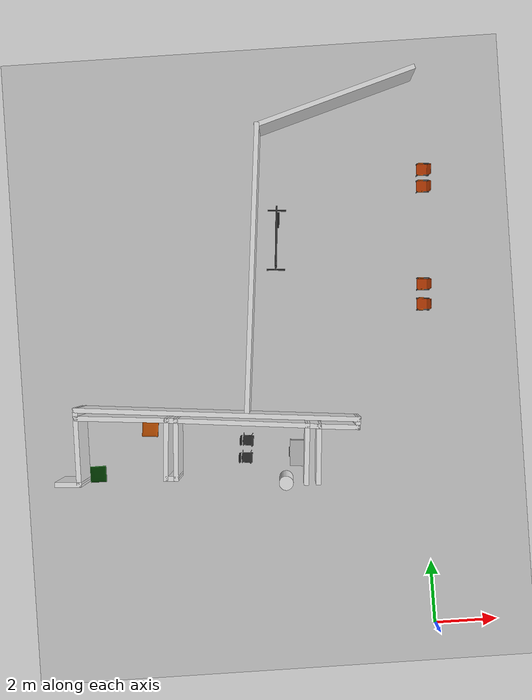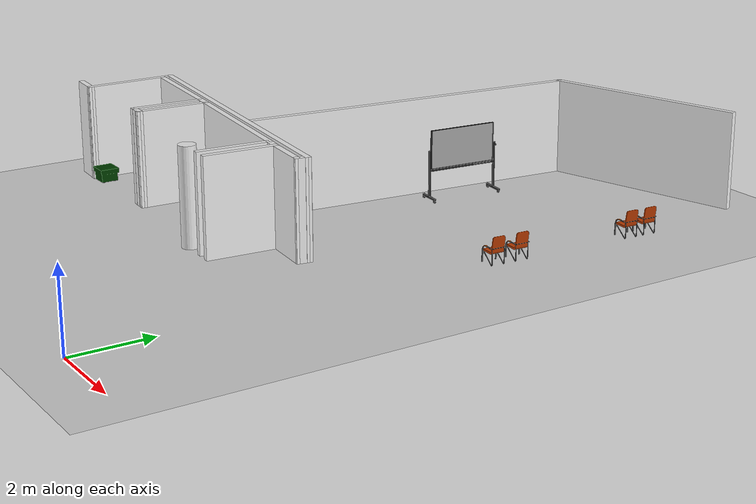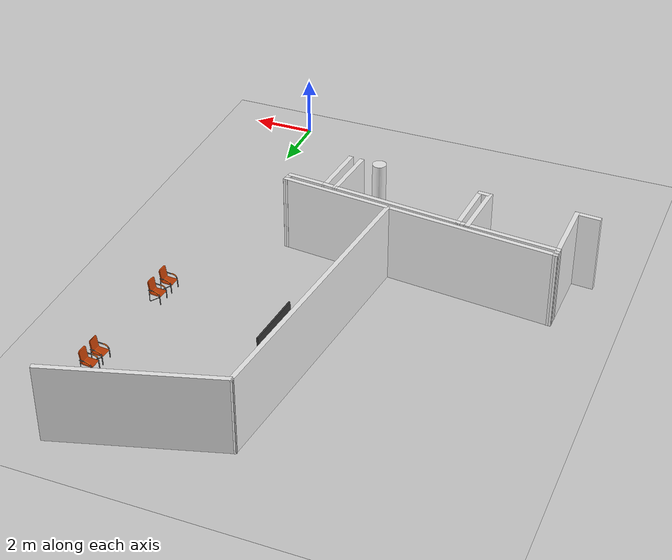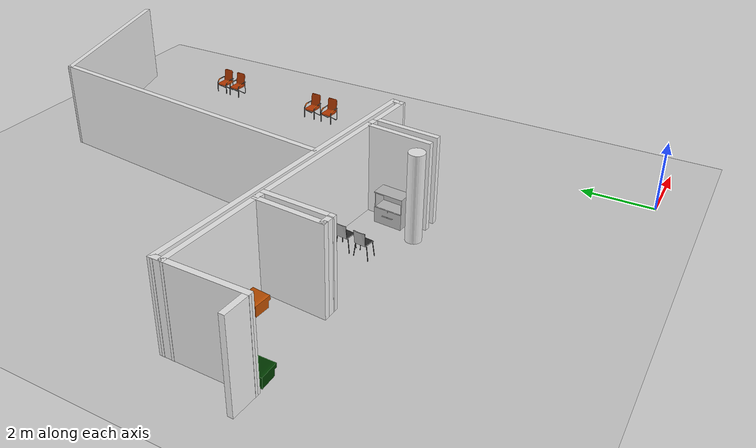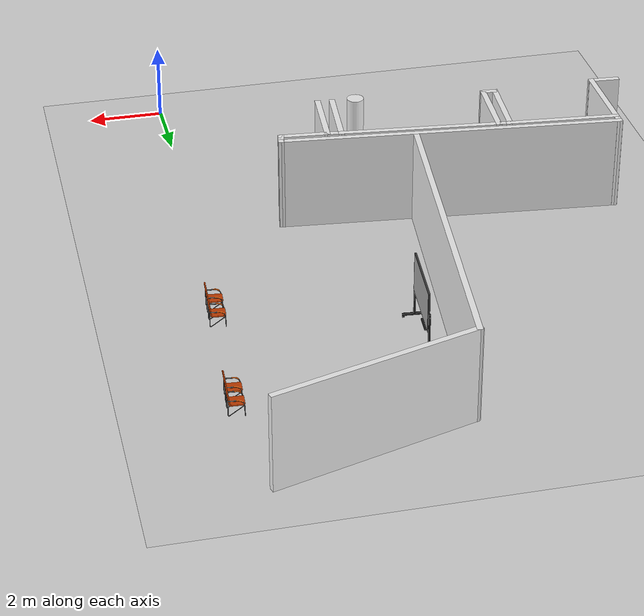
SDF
<sdf version="1.6">
 <world name="default">
  <model name="ground_plane">
   <static>1</static>
   <link name="link">
    <collision name="collision">
     <geometry><plane><normal>0 0 1</normal><size>100 100</size></plane></geometry>
     <surface><friction><ode><mu>100</mu><mu2>50</mu2></ode></friction></surface>
    </collision>
    <visual name="visual">
     <cast_shadows>0</cast_shadows>
     <geometry><plane><normal>0 0 1</normal><size>100 100</size></plane></geometry>
     <material>
      <script><uri>file://media/materials/scripts/gazebo.material</uri><name>Gazebo/Grey</name></script>
     </material>
    </visual>
   </link>
  </model>
  <model name="ucu_basic_frame.world">
   <link name="Wall_219">
    <pose>-11.9656 1.73894 0 0 0 -0.069823</pose>
    <visual name="Wall_219_Visual">
     <pose>0 0 1.25 0 -0 0</pose>
     <geometry><box><size>0.822603 0.15 2.5</size></box></geometry>
     <material>
      <script><uri>file://media/materials/scripts/gazebo.material</uri><name>Gazebo/White</name></script>
      <ambient>1 1 1 1</ambient>
      <diffuse>1 1 1 1</diffuse>
      <specular>0 0 0 1</specular>
      <emissive>0 0 0 1</emissive>
     </material>
     <meta><layer>0</layer></meta>
    </visual>
    <collision name="Wall_219_Collision">
     <pose>0 0 1.25 0 -0 0</pose>
     <geometry><box><size>0.822603 0.15 2.5</size></box></geometry>
     <surface>
      <friction>
       <ode><mu>1</mu><mu2>1</mu2><fdir1>0 0 0</fdir1><slip1>0</slip1><slip2>0</slip2></ode>
       <torsional>
        <coefficient>1</coefficient>
        <patch_radius>0</patch_radius>
        <surface_radius>0</surface_radius>
        <use_patch_radius>1</use_patch_radius>
        <ode><slip>0</slip></ode>
       </torsional>
      </friction>
      <bounce><restitution_coefficient>0</restitution_coefficient><threshold>1e+06</threshold></bounce>
      <contact>
       <collide_without_contact>0</collide_without_contact>
       <collide_without_contact_bitmask>1</collide_without_contact_bitmask>
       <collide_bitmask>1</collide_bitmask>
       <ode>
        <soft_cfm>0</soft_cfm>
        <soft_erp>0.2</soft_erp>
        <kp>1e+13</kp>
        <kd>1</kd>
        <max_vel>0.01</max_vel>
        <min_depth>0</min_depth>
       </ode>
       <bullet>
        <split_impulse>1</split_impulse>
        <split_impulse_penetration_threshold>-0.01</split_impulse_penetration_threshold>
        <soft_cfm>0</soft_cfm>
        <soft_erp>0.2</soft_erp>
        <kp>1e+13</kp>
        <kd>1</kd>
       </bullet>
      </contact>
     </surface>
    </collision>
   </link>
   <link name="Wall_235">
    <pose>-8.66541 3.50535 0 0 0 -0.094238</pose>
    <visual name="Wall_235_Visual">
     <pose>0 0 1.25 0 -0 0</pose>
     <geometry><box><size>0.419456 0.15 2.5</size></box></geometry>
     <material>
      <script><uri>file://media/materials/scripts/gazebo.material</uri><name>Gazebo/White</name></script>
      <ambient>1 1 1 1</ambient>
      <diffuse>1 1 1 1</diffuse>
      <specular>0 0 0 1</specular>
      <emissive>0 0 0 1</emissive>
     </material>
     <meta><layer>0</layer></meta>
    </visual>
    <collision name="Wall_235_Collision">
     <pose>0 0 1.25 0 -0 0</pose>
     <geometry><box><size>0.419456 0.15 2.5</size></box></geometry>
     <surface>
      <friction>
       <ode><mu>1</mu><mu2>1</mu2><fdir1>0 0 0</fdir1><slip1>0</slip1><slip2>0</slip2></ode>
       <torsional>
        <coefficient>1</coefficient>
        <patch_radius>0</patch_radius>
        <surface_radius>0</surface_radius>
        <use_patch_radius>1</use_patch_radius>
        <ode><slip>0</slip></ode>
       </torsional>
      </friction>
      <bounce><restitution_coefficient>0</restitution_coefficient><threshold>1e+06</threshold></bounce>
      <contact>
       <collide_without_contact>0</collide_without_contact>
       <collide_without_contact_bitmask>1</collide_without_contact_bitmask>
       <collide_bitmask>1</collide_bitmask>
       <ode>
        <soft_cfm>0</soft_cfm>
        <soft_erp>0.2</soft_erp>
        <kp>1e+13</kp>
        <kd>1</kd>
        <max_vel>0.01</max_vel>
        <min_depth>0</min_depth>
       </ode>
       <bullet>
        <split_impulse>1</split_impulse>
        <split_impulse_penetration_threshold>-0.01</split_impulse_penetration_threshold>
        <soft_cfm>0</soft_cfm>
        <soft_erp>0.2</soft_erp>
        <kp>1e+13</kp>
        <kd>1</kd>
       </bullet>
      </contact>
     </surface>
    </collision>
   </link>
   <link name="Wall_236">
    <pose>-6.50341 3.28586 0 0 0 -0.101636</pose>
    <visual name="Wall_236_Visual">
     <pose>0 0 1.25 0 -0 0</pose>
     <geometry><box><size>4.22679 0.15 2.5</size></box></geometry>
     <material>
      <script><uri>file://media/materials/scripts/gazebo.material</uri><name>Gazebo/White</name></script>
      <ambient>1 1 1 1</ambient>
      <diffuse>1 1 1 1</diffuse>
      <specular>0 0 0 1</specular>
      <emissive>0 0 0 1</emissive>
     </material>
     <meta><layer>0</layer></meta>
    </visual>
    <collision name="Wall_236_Collision">
     <pose>0 0 1.25 0 -0 0</pose>
     <geometry><box><size>4.22679 0.15 2.5</size></box></geometry>
     <surface>
      <friction>
       <ode><mu>1</mu><mu2>1</mu2><fdir1>0 0 0</fdir1><slip1>0</slip1><slip2>0</slip2></ode>
       <torsional>
        <coefficient>1</coefficient>
        <patch_radius>0</patch_radius>
        <surface_radius>0</surface_radius>
        <use_patch_radius>1</use_patch_radius>
        <ode><slip>0</slip></ode>
       </torsional>
      </friction>
      <bounce><restitution_coefficient>0</restitution_coefficient><threshold>1e+06</threshold></bounce>
      <contact>
       <collide_without_contact>0</collide_without_contact>
       <collide_without_contact_bitmask>1</collide_without_contact_bitmask>
       <collide_bitmask>1</collide_bitmask>
       <ode>
        <soft_cfm>0</soft_cfm>
        <soft_erp>0.2</soft_erp>
        <kp>1e+13</kp>
        <kd>1</kd>
        <max_vel>0.01</max_vel>
        <min_depth>0</min_depth>
       </ode>
       <bullet>
        <split_impulse>1</split_impulse>
        <split_impulse_penetration_threshold>-0.01</split_impulse_penetration_threshold>
        <soft_cfm>0</soft_cfm>
        <soft_erp>0.2</soft_erp>
        <kp>1e+13</kp>
        <kd>1</kd>
       </bullet>
      </contact>
     </surface>
    </collision>
   </link>
   <link name="Wall_238">
    <pose>-10.2067 3.64028 0 0 -0 3.05493</pose>
    <visual name="Wall_238_Visual">
     <pose>0 0 1.25 0 -0 0</pose>
     <geometry><box><size>2.97493 0.15 2.5</size></box></geometry>
     <material>
      <script><uri>file://media/materials/scripts/gazebo.material</uri><name>Gazebo/White</name></script>
      <ambient>1 1 1 1</ambient>
      <diffuse>1 1 1 1</diffuse>
      <specular>0 0 0 1</specular>
      <emissive>0 0 0 1</emissive>
     </material>
     <meta><layer>0</layer></meta>
    </visual>
    <collision name="Wall_238_Collision">
     <pose>0 0 1.25 0 -0 0</pose>
     <geometry><box><size>2.97493 0.15 2.5</size></box></geometry>
     <surface>
      <friction>
       <ode><mu>1</mu><mu2>1</mu2><fdir1>0 0 0</fdir1><slip1>0</slip1><slip2>0</slip2></ode>
       <torsional>
        <coefficient>1</coefficient>
        <patch_radius>0</patch_radius>
        <surface_radius>0</surface_radius>
        <use_patch_radius>1</use_patch_radius>
        <ode><slip>0</slip></ode>
       </torsional>
      </friction>
      <bounce><restitution_coefficient>0</restitution_coefficient><threshold>1e+06</threshold></bounce>
      <contact>
       <collide_without_contact>0</collide_without_contact>
       <collide_without_contact_bitmask>1</collide_without_contact_bitmask>
       <collide_bitmask>1</collide_bitmask>
       <ode>
        <soft_cfm>0</soft_cfm>
        <soft_erp>0.2</soft_erp>
        <kp>1e+13</kp>
        <kd>1</kd>
        <max_vel>0.01</max_vel>
        <min_depth>0</min_depth>
       </ode>
       <bullet>
        <split_impulse>1</split_impulse>
        <split_impulse_penetration_threshold>-0.01</split_impulse_penetration_threshold>
        <soft_cfm>0</soft_cfm>
        <soft_erp>0.2</soft_erp>
        <kp>1e+13</kp>
        <kd>1</kd>
       </bullet>
      </contact>
     </surface>
    </collision>
   </link>
   <link name="Wall_240">
    <pose>-8.88603 2.62353 0 0 0 -1.63778</pose>
    <visual name="Wall_240_Visual">
     <pose>0 0 1.25 0 -0 0</pose>
     <geometry><box><size>1.94303 0.15 2.5</size></box></geometry>
     <material>
      <script><uri>file://media/materials/scripts/gazebo.material</uri><name>Gazebo/White</name></script>
      <ambient>1 1 1 1</ambient>
      <diffuse>1 1 1 1</diffuse>
      <specular>0 0 0 1</specular>
      <emissive>0 0 0 1</emissive>
     </material>
     <meta><layer>0</layer></meta>
    </visual>
    <collision name="Wall_240_Collision">
     <pose>0 0 1.25 0 -0 0</pose>
     <geometry><box><size>1.94303 0.15 2.5</size></box></geometry>
     <surface>
      <friction>
       <ode><mu>1</mu><mu2>1</mu2><fdir1>0 0 0</fdir1><slip1>0</slip1><slip2>0</slip2></ode>
       <torsional>
        <coefficient>1</coefficient>
        <patch_radius>0</patch_radius>
        <surface_radius>0</surface_radius>
        <use_patch_radius>1</use_patch_radius>
        <ode><slip>0</slip></ode>
       </torsional>
      </friction>
      <bounce><restitution_coefficient>0</restitution_coefficient><threshold>1e+06</threshold></bounce>
      <contact>
       <collide_without_contact>0</collide_without_contact>
       <collide_without_contact_bitmask>1</collide_without_contact_bitmask>
       <collide_bitmask>1</collide_bitmask>
       <ode>
        <soft_cfm>0</soft_cfm>
        <soft_erp>0.2</soft_erp>
        <kp>1e+13</kp>
        <kd>1</kd>
        <max_vel>0.01</max_vel>
        <min_depth>0</min_depth>
       </ode>
       <bullet>
        <split_impulse>1</split_impulse>
        <split_impulse_penetration_threshold>-0.01</split_impulse_penetration_threshold>
        <soft_cfm>0</soft_cfm>
        <soft_erp>0.2</soft_erp>
        <kp>1e+13</kp>
        <kd>1</kd>
       </bullet>
      </contact>
     </surface>
    </collision>
   </link>
   <link name="Wall_242">
    <pose>-8.58067 2.60137 0 0 0 -1.62614</pose>
    <visual name="Wall_242_Visual">
     <pose>0 0 1.25 0 -0 0</pose>
     <geometry><box><size>1.93473 0.15 2.5</size></box></geometry>
     <material>
      <script><uri>file://media/materials/scripts/gazebo.material</uri><name>Gazebo/White</name></script>
      <ambient>1 1 1 1</ambient>
      <diffuse>1 1 1 1</diffuse>
      <specular>0 0 0 1</specular>
      <emissive>0 0 0 1</emissive>
     </material>
     <meta><layer>0</layer></meta>
    </visual>
    <collision name="Wall_242_Collision">
     <pose>0 0 1.25 0 -0 0</pose>
     <geometry><box><size>1.93473 0.15 2.5</size></box></geometry>
     <surface>
      <friction>
       <ode><mu>1</mu><mu2>1</mu2><fdir1>0 0 0</fdir1><slip1>0</slip1><slip2>0</slip2></ode>
       <torsional>
        <coefficient>1</coefficient>
        <patch_radius>0</patch_radius>
        <surface_radius>0</surface_radius>
        <use_patch_radius>1</use_patch_radius>
        <ode><slip>0</slip></ode>
       </torsional>
      </friction>
      <bounce><restitution_coefficient>0</restitution_coefficient><threshold>1e+06</threshold></bounce>
      <contact>
       <collide_without_contact>0</collide_without_contact>
       <collide_without_contact_bitmask>1</collide_without_contact_bitmask>
       <collide_bitmask>1</collide_bitmask>
       <ode>
        <soft_cfm>0</soft_cfm>
        <soft_erp>0.2</soft_erp>
        <kp>1e+13</kp>
        <kd>1</kd>
        <max_vel>0.01</max_vel>
        <min_depth>0</min_depth>
       </ode>
       <bullet>
        <split_impulse>1</split_impulse>
        <split_impulse_penetration_threshold>-0.01</split_impulse_penetration_threshold>
        <soft_cfm>0</soft_cfm>
        <soft_erp>0.2</soft_erp>
        <kp>1e+13</kp>
        <kd>1</kd>
       </bullet>
      </contact>
     </surface>
    </collision>
   </link>
   <link name="Wall_243">
    <pose>-8.77481 1.71955 0 0 -0 3.07623</pose>
    <visual name="Wall_243_Visual">
     <pose>0 0 1.25 0 -0 0</pose>
     <geometry><box><size>0.440136 0.15 2.5</size></box></geometry>
     <material>
      <script><uri>file://media/materials/scripts/gazebo.material</uri><name>Gazebo/White</name></script>
      <ambient>1 1 1 1</ambient>
      <diffuse>1 1 1 1</diffuse>
      <specular>0 0 0 1</specular>
      <emissive>0 0 0 1</emissive>
     </material>
     <meta><layer>0</layer></meta>
    </visual>
    <collision name="Wall_243_Collision">
     <pose>0 0 1.25 0 -0 0</pose>
     <geometry><box><size>0.440136 0.15 2.5</size></box></geometry>
     <surface>
      <friction>
       <ode><mu>1</mu><mu2>1</mu2><fdir1>0 0 0</fdir1><slip1>0</slip1><slip2>0</slip2></ode>
       <torsional>
        <coefficient>1</coefficient>
        <patch_radius>0</patch_radius>
        <surface_radius>0</surface_radius>
        <use_patch_radius>1</use_patch_radius>
        <ode><slip>0</slip></ode>
       </torsional>
      </friction>
      <bounce><restitution_coefficient>0</restitution_coefficient><threshold>1e+06</threshold></bounce>
      <contact>
       <collide_without_contact>0</collide_without_contact>
       <collide_without_contact_bitmask>1</collide_without_contact_bitmask>
       <collide_bitmask>1</collide_bitmask>
       <ode>
        <soft_cfm>0</soft_cfm>
        <soft_erp>0.2</soft_erp>
        <kp>1e+13</kp>
        <kd>1</kd>
        <max_vel>0.01</max_vel>
        <min_depth>0</min_depth>
       </ode>
       <bullet>
        <split_impulse>1</split_impulse>
        <split_impulse_penetration_threshold>-0.01</split_impulse_penetration_threshold>
        <soft_cfm>0</soft_cfm>
        <soft_erp>0.2</soft_erp>
        <kp>1e+13</kp>
        <kd>1</kd>
       </bullet>
      </contact>
     </surface>
    </collision>
   </link>
   <link name="Wall_246">
    <pose>-4.29722 3.05489 0 0 0 -0.134585</pose>
    <visual name="Wall_246_Visual">
     <pose>0 0 1.25 0 -0 0</pose>
     <geometry><box><size>0.509875 0.15 2.5</size></box></geometry>
     <material>
      <script><uri>file://media/materials/scripts/gazebo.material</uri><name>Gazebo/White</name></script>
      <ambient>1 1 1 1</ambient>
      <diffuse>1 1 1 1</diffuse>
      <specular>0 0 0 1</specular>
      <emissive>0 0 0 1</emissive>
     </material>
     <meta><layer>0</layer></meta>
    </visual>
    <collision name="Wall_246_Collision">
     <pose>0 0 1.25 0 -0 0</pose>
     <geometry><box><size>0.509875 0.15 2.5</size></box></geometry>
     <surface>
      <friction>
       <ode><mu>1</mu><mu2>1</mu2><fdir1>0 0 0</fdir1><slip1>0</slip1><slip2>0</slip2></ode>
       <torsional>
        <coefficient>1</coefficient>
        <patch_radius>0</patch_radius>
        <surface_radius>0</surface_radius>
        <use_patch_radius>1</use_patch_radius>
        <ode><slip>0</slip></ode>
       </torsional>
      </friction>
      <bounce><restitution_coefficient>0</restitution_coefficient><threshold>1e+06</threshold></bounce>
      <contact>
       <collide_without_contact>0</collide_without_contact>
       <collide_without_contact_bitmask>1</collide_without_contact_bitmask>
       <collide_bitmask>1</collide_bitmask>
       <ode>
        <soft_cfm>0</soft_cfm>
        <soft_erp>0.2</soft_erp>
        <kp>1e+13</kp>
        <kd>1</kd>
        <max_vel>0.01</max_vel>
        <min_depth>0</min_depth>
       </ode>
       <bullet>
        <split_impulse>1</split_impulse>
        <split_impulse_penetration_threshold>-0.01</split_impulse_penetration_threshold>
        <soft_cfm>0</soft_cfm>
        <soft_erp>0.2</soft_erp>
        <kp>1e+13</kp>
        <kd>1</kd>
       </bullet>
      </contact>
     </surface>
    </collision>
   </link>
   <link name="Wall_247">
    <pose>-3.52661 2.97846 0 0 0 -0.088046</pose>
    <visual name="Wall_247_Visual">
     <pose>0 0 1.25 0 -0 0</pose>
     <geometry><box><size>1.33921 0.15 2.5</size></box></geometry>
     <material>
      <script><uri>file://media/materials/scripts/gazebo.material</uri><name>Gazebo/White</name></script>
      <ambient>1 1 1 1</ambient>
      <diffuse>1 1 1 1</diffuse>
      <specular>0 0 0 1</specular>
      <emissive>0 0 0 1</emissive>
     </material>
     <meta><layer>0</layer></meta>
    </visual>
    <collision name="Wall_247_Collision">
     <pose>0 0 1.25 0 -0 0</pose>
     <geometry><box><size>1.33921 0.15 2.5</size></box></geometry>
     <surface>
      <friction>
       <ode><mu>1</mu><mu2>1</mu2><fdir1>0 0 0</fdir1><slip1>0</slip1><slip2>0</slip2></ode>
       <torsional>
        <coefficient>1</coefficient>
        <patch_radius>0</patch_radius>
        <surface_radius>0</surface_radius>
        <use_patch_radius>1</use_patch_radius>
        <ode><slip>0</slip></ode>
       </torsional>
      </friction>
      <bounce><restitution_coefficient>0</restitution_coefficient><threshold>1e+06</threshold></bounce>
      <contact>
       <collide_without_contact>0</collide_without_contact>
       <collide_without_contact_bitmask>1</collide_without_contact_bitmask>
       <collide_bitmask>1</collide_bitmask>
       <ode>
        <soft_cfm>0</soft_cfm>
        <soft_erp>0.2</soft_erp>
        <kp>1e+13</kp>
        <kd>1</kd>
        <max_vel>0.01</max_vel>
        <min_depth>0</min_depth>
       </ode>
       <bullet>
        <split_impulse>1</split_impulse>
        <split_impulse_penetration_threshold>-0.01</split_impulse_penetration_threshold>
        <soft_cfm>0</soft_cfm>
        <soft_erp>0.2</soft_erp>
        <kp>1e+13</kp>
        <kd>1</kd>
       </bullet>
      </contact>
     </surface>
    </collision>
   </link>
   <link name="Wall_248">
    <pose>-2.91396 3.04829 0 0 -0 1.40565</pose>
    <visual name="Wall_248_Visual">
     <pose>0 0 1.25 0 -0 0</pose>
     <geometry><box><size>0.397585 0.15 2.5</size></box></geometry>
     <material>
      <script><uri>file://media/materials/scripts/gazebo.material</uri><name>Gazebo/White</name></script>
      <ambient>1 1 1 1</ambient>
      <diffuse>1 1 1 1</diffuse>
      <specular>0 0 0 1</specular>
      <emissive>0 0 0 1</emissive>
     </material>
     <meta><layer>0</layer></meta>
    </visual>
    <collision name="Wall_248_Collision">
     <pose>0 0 1.25 0 -0 0</pose>
     <geometry><box><size>0.397585 0.15 2.5</size></box></geometry>
     <surface>
      <friction>
       <ode><mu>1</mu><mu2>1</mu2><fdir1>0 0 0</fdir1><slip1>0</slip1><slip2>0</slip2></ode>
       <torsional>
        <coefficient>1</coefficient>
        <patch_radius>0</patch_radius>
        <surface_radius>0</surface_radius>
        <use_patch_radius>1</use_patch_radius>
        <ode><slip>0</slip></ode>
       </torsional>
      </friction>
      <bounce><restitution_coefficient>0</restitution_coefficient><threshold>1e+06</threshold></bounce>
      <contact>
       <collide_without_contact>0</collide_without_contact>
       <collide_without_contact_bitmask>1</collide_without_contact_bitmask>
       <collide_bitmask>1</collide_bitmask>
       <ode>
        <soft_cfm>0</soft_cfm>
        <soft_erp>0.2</soft_erp>
        <kp>1e+13</kp>
        <kd>1</kd>
        <max_vel>0.01</max_vel>
        <min_depth>0</min_depth>
       </ode>
       <bullet>
        <split_impulse>1</split_impulse>
        <split_impulse_penetration_threshold>-0.01</split_impulse_penetration_threshold>
        <soft_cfm>0</soft_cfm>
        <soft_erp>0.2</soft_erp>
        <kp>1e+13</kp>
        <kd>1</kd>
       </bullet>
      </contact>
     </surface>
    </collision>
   </link>
   <link name="Wall_250">
    <pose>-4.55256 2.20116 0 0 0 -1.65832</pose>
    <visual name="Wall_250_Visual">
     <pose>0 0 1.25 0 -0 0</pose>
     <geometry><box><size>1.91251 0.15 2.5</size></box></geometry>
     <material>
      <script><uri>file://media/materials/scripts/gazebo.material</uri><name>Gazebo/White</name></script>
      <ambient>1 1 1 1</ambient>
      <diffuse>1 1 1 1</diffuse>
      <specular>0 0 0 1</specular>
      <emissive>0 0 0 1</emissive>
     </material>
     <meta><layer>0</layer></meta>
    </visual>
    <collision name="Wall_250_Collision">
     <pose>0 0 1.25 0 -0 0</pose>
     <geometry><box><size>1.91251 0.15 2.5</size></box></geometry>
     <surface>
      <friction>
       <ode><mu>1</mu><mu2>1</mu2><fdir1>0 0 0</fdir1><slip1>0</slip1><slip2>0</slip2></ode>
       <torsional>
        <coefficient>1</coefficient>
        <patch_radius>0</patch_radius>
        <surface_radius>0</surface_radius>
        <use_patch_radius>1</use_patch_radius>
        <ode><slip>0</slip></ode>
       </torsional>
      </friction>
      <bounce><restitution_coefficient>0</restitution_coefficient><threshold>1e+06</threshold></bounce>
      <contact>
       <collide_without_contact>0</collide_without_contact>
       <collide_without_contact_bitmask>1</collide_without_contact_bitmask>
       <collide_bitmask>1</collide_bitmask>
       <ode>
        <soft_cfm>0</soft_cfm>
        <soft_erp>0.2</soft_erp>
        <kp>1e+13</kp>
        <kd>1</kd>
        <max_vel>0.01</max_vel>
        <min_depth>0</min_depth>
       </ode>
       <bullet>
        <split_impulse>1</split_impulse>
        <split_impulse_penetration_threshold>-0.01</split_impulse_penetration_threshold>
        <soft_cfm>0</soft_cfm>
        <soft_erp>0.2</soft_erp>
        <kp>1e+13</kp>
        <kd>1</kd>
       </bullet>
      </contact>
     </surface>
    </collision>
   </link>
   <link name="Wall_252">
    <pose>-4.18528 2.16653 0 0 -0 1.49415</pose>
    <visual name="Wall_252_Visual">
     <pose>0 0 1.25 0 -0 0</pose>
     <geometry><box><size>1.88354 0.15 2.5</size></box></geometry>
     <material>
      <script><uri>file://media/materials/scripts/gazebo.material</uri><name>Gazebo/White</name></script>
      <ambient>1 1 1 1</ambient>
      <diffuse>1 1 1 1</diffuse>
      <specular>0 0 0 1</specular>
      <emissive>0 0 0 1</emissive>
     </material>
     <meta><layer>0</layer></meta>
    </visual>
    <collision name="Wall_252_Collision">
     <pose>0 0 1.25 0 -0 0</pose>
     <geometry><box><size>1.88354 0.15 2.5</size></box></geometry>
     <surface>
      <friction>
       <ode><mu>1</mu><mu2>1</mu2><fdir1>0 0 0</fdir1><slip1>0</slip1><slip2>0</slip2></ode>
       <torsional>
        <coefficient>1</coefficient>
        <patch_radius>0</patch_radius>
        <surface_radius>0</surface_radius>
        <use_patch_radius>1</use_patch_radius>
        <ode><slip>0</slip></ode>
       </torsional>
      </friction>
      <bounce><restitution_coefficient>0</restitution_coefficient><threshold>1e+06</threshold></bounce>
      <contact>
       <collide_without_contact>0</collide_without_contact>
       <collide_without_contact_bitmask>1</collide_without_contact_bitmask>
       <collide_bitmask>1</collide_bitmask>
       <ode>
        <soft_cfm>0</soft_cfm>
        <soft_erp>0.2</soft_erp>
        <kp>1e+13</kp>
        <kd>1</kd>
        <max_vel>0.01</max_vel>
        <min_depth>0</min_depth>
       </ode>
       <bullet>
        <split_impulse>1</split_impulse>
        <split_impulse_penetration_threshold>-0.01</split_impulse_penetration_threshold>
        <soft_cfm>0</soft_cfm>
        <soft_erp>0.2</soft_erp>
        <kp>1e+13</kp>
        <kd>1</kd>
       </bullet>
      </contact>
     </surface>
    </collision>
   </link>
   <link name="Wall_260">
    <pose>-7.25327 3.59269 0 0 -0 3.04503</pose>
    <visual name="Wall_260_Visual">
     <pose>0 0 1.25 0 -0 0</pose>
     <geometry><box><size>8.91013 0.15 2.5</size></box></geometry>
     <material>
      <script><uri>file://media/materials/scripts/gazebo.material</uri><name>Gazebo/White</name></script>
      <ambient>1 1 1 1</ambient>
      <diffuse>1 1 1 1</diffuse>
      <specular>0 0 0 1</specular>
      <emissive>0 0 0 1</emissive>
     </material>
     <meta><layer>0</layer></meta>
    </visual>
    <collision name="Wall_260_Collision">
     <pose>0 0 1.25 0 -0 0</pose>
     <geometry><box><size>8.91013 0.15 2.5</size></box></geometry>
     <surface>
      <friction>
       <ode><mu>1</mu><mu2>1</mu2><fdir1>0 0 0</fdir1><slip1>0</slip1><slip2>0</slip2></ode>
       <torsional>
        <coefficient>1</coefficient>
        <patch_radius>0</patch_radius>
        <surface_radius>0</surface_radius>
        <use_patch_radius>1</use_patch_radius>
        <ode><slip>0</slip></ode>
       </torsional>
      </friction>
      <bounce><restitution_coefficient>0</restitution_coefficient><threshold>1e+06</threshold></bounce>
      <contact>
       <collide_without_contact>0</collide_without_contact>
       <collide_without_contact_bitmask>1</collide_without_contact_bitmask>
       <collide_bitmask>1</collide_bitmask>
       <ode>
        <soft_cfm>0</soft_cfm>
        <soft_erp>0.2</soft_erp>
        <kp>1e+13</kp>
        <kd>1</kd>
        <max_vel>0.01</max_vel>
        <min_depth>0</min_depth>
       </ode>
       <bullet>
        <split_impulse>1</split_impulse>
        <split_impulse_penetration_threshold>-0.01</split_impulse_penetration_threshold>
        <soft_cfm>0</soft_cfm>
        <soft_erp>0.2</soft_erp>
        <kp>1e+13</kp>
        <kd>1</kd>
       </bullet>
      </contact>
     </surface>
    </collision>
   </link>
   <link name="Wall_317">
    <pose>-5.88136 8.00561 0 0 0 -1.6704</pose>
    <visual name="Wall_317_Visual">
     <pose>0 0 1.25 0 -0 0</pose>
     <geometry><box><size>9.08373 0.15 2.5</size></box></geometry>
     <material>
      <script><uri>file://media/materials/scripts/gazebo.material</uri><name>Gazebo/White</name></script>
      <ambient>1 1 1 1</ambient>
      <diffuse>1 1 1 1</diffuse>
      <specular>0 0 0 1</specular>
      <emissive>0 0 0 1</emissive>
     </material>
     <meta><layer>0</layer></meta>
    </visual>
    <collision name="Wall_317_Collision">
     <pose>0 0 1.25 0 -0 0</pose>
     <geometry><box><size>9.08373 0.15 2.5</size></box></geometry>
     <surface>
      <friction>
       <ode><mu>1</mu><mu2>1</mu2><fdir1>0 0 0</fdir1><slip1>0</slip1><slip2>0</slip2></ode>
       <torsional>
        <coefficient>1</coefficient>
        <patch_radius>0</patch_radius>
        <surface_radius>0</surface_radius>
        <use_patch_radius>1</use_patch_radius>
        <ode><slip>0</slip></ode>
       </torsional>
      </friction>
      <bounce><restitution_coefficient>0</restitution_coefficient><threshold>1e+06</threshold></bounce>
      <contact>
       <collide_without_contact>0</collide_without_contact>
       <collide_without_contact_bitmask>1</collide_without_contact_bitmask>
       <collide_bitmask>1</collide_bitmask>
       <ode>
        <soft_cfm>0</soft_cfm>
        <soft_erp>0.2</soft_erp>
        <kp>1e+13</kp>
        <kd>1</kd>
        <max_vel>0.01</max_vel>
        <min_depth>0</min_depth>
       </ode>
       <bullet>
        <split_impulse>1</split_impulse>
        <split_impulse_penetration_threshold>-0.01</split_impulse_penetration_threshold>
        <soft_cfm>0</soft_cfm>
        <soft_erp>0.2</soft_erp>
        <kp>1e+13</kp>
        <kd>1</kd>
       </bullet>
      </contact>
     </surface>
    </collision>
   </link>
   <link name="Wall_319">
    <pose>-2.97852 13.1783 0 0 -0 0.287873</pose>
    <visual name="Wall_319_Visual">
     <pose>0 0 1.25 0 -0 0</pose>
     <geometry><box><size>5.27832 0.15 2.5</size></box></geometry>
     <material>
      <script><uri>file://media/materials/scripts/gazebo.material</uri><name>Gazebo/White</name></script>
      <ambient>1 1 1 1</ambient>
      <diffuse>1 1 1 1</diffuse>
      <specular>0 0 0 1</specular>
      <emissive>0 0 0 1</emissive>
     </material>
     <meta><layer>0</layer></meta>
    </visual>
    <collision name="Wall_319_Collision">
     <pose>0 0 1.25 0 -0 0</pose>
     <geometry><box><size>5.27832 0.15 2.5</size></box></geometry>
     <surface>
      <friction>
       <ode><mu>1</mu><mu2>1</mu2><fdir1>0 0 0</fdir1><slip1>0</slip1><slip2>0</slip2></ode>
       <torsional>
        <coefficient>1</coefficient>
        <patch_radius>0</patch_radius>
        <surface_radius>0</surface_radius>
        <use_patch_radius>1</use_patch_radius>
        <ode><slip>0</slip></ode>
       </torsional>
      </friction>
      <bounce><restitution_coefficient>0</restitution_coefficient><threshold>1e+06</threshold></bounce>
      <contact>
       <collide_without_contact>0</collide_without_contact>
       <collide_without_contact_bitmask>1</collide_without_contact_bitmask>
       <collide_bitmask>1</collide_bitmask>
       <ode>
        <soft_cfm>0</soft_cfm>
        <soft_erp>0.2</soft_erp>
        <kp>1e+13</kp>
        <kd>1</kd>
        <max_vel>0.01</max_vel>
        <min_depth>0</min_depth>
       </ode>
       <bullet>
        <split_impulse>1</split_impulse>
        <split_impulse_penetration_threshold>-0.01</split_impulse_penetration_threshold>
        <soft_cfm>0</soft_cfm>
        <soft_erp>0.2</soft_erp>
        <kp>1e+13</kp>
        <kd>1</kd>
       </bullet>
      </contact>
     </surface>
    </collision>
   </link>
   <link name="Wall_328">
    <pose>-11.622 2.739 0 0 -0 1.56287</pose>
    <inertial>
     <mass>1</mass>
     <inertia><ixx>1</ixx><ixy>0</ixy><ixz>0</ixz><iyy>1</iyy><iyz>0</iyz><izz>1</izz></inertia>
    </inertial>
    <visual name="Wall_328_Visual">
     <pose>0 0 1.25 0 -0 0</pose>
     <geometry><box><size>2.19711 0.15 2.5</size></box></geometry>
     <material>
      <script><uri>file://media/materials/scripts/gazebo.material</uri><name>Gazebo/White</name></script>
      <ambient>1 1 1 1</ambient>
      <diffuse>1 1 1 1</diffuse>
      <specular>0 0 0 1</specular>
      <emissive>0 0 0 1</emissive>
      <shader type="vertex"><normal_map>__default__</normal_map></shader>
     </material>
     <meta><layer>0</layer></meta>
    </visual>
    <collision name="Wall_328_Collision">
     <pose>0 0 1.25 0 -0 0</pose>
     <geometry><box><size>2.19711 0.15 2.5</size></box></geometry>
     <surface>
      <friction>
       <ode><mu>1</mu><mu2>1</mu2><fdir1>0 0 0</fdir1><slip1>0</slip1><slip2>0</slip2></ode>
       <torsional>
        <coefficient>1</coefficient>
        <patch_radius>0</patch_radius>
        <surface_radius>0</surface_radius>
        <use_patch_radius>1</use_patch_radius>
        <ode><slip>0</slip></ode>
       </torsional>
      </friction>
      <bounce><restitution_coefficient>0</restitution_coefficient><threshold>1e+06</threshold></bounce>
      <contact>
       <collide_without_contact>0</collide_without_contact>
       <collide_without_contact_bitmask>1</collide_without_contact_bitmask>
       <collide_bitmask>1</collide_bitmask>
       <ode>
        <soft_cfm>0</soft_cfm>
        <soft_erp>0.2</soft_erp>
        <kp>1e+13</kp>
        <kd>1</kd>
        <max_vel>0.01</max_vel>
        <min_depth>0</min_depth>
       </ode>
       <bullet>
        <split_impulse>1</split_impulse>
        <split_impulse_penetration_threshold>-0.01</split_impulse_penetration_threshold>
        <soft_cfm>0</soft_cfm>
        <soft_erp>0.2</soft_erp>
        <kp>1e+13</kp>
        <kd>1</kd>
       </bullet>
      </contact>
     </surface>
    </collision>
   </link>
   <link name="Wall_329">
    <pose>-11.6134 3.88876 0 0 -0 1.56703</pose>
    <visual name="Wall_329_Visual">
     <pose>0 0 1.25 0 -0 0</pose>
     <geometry><box><size>0.402461 0.15 2.5</size></box></geometry>
     <material>
      <script><uri>file://media/materials/scripts/gazebo.material</uri><name>Gazebo/White</name></script>
      <ambient>1 1 1 1</ambient>
      <diffuse>1 1 1 1</diffuse>
      <specular>0 0 0 1</specular>
      <emissive>0 0 0 1</emissive>
     </material>
     <meta><layer>0</layer></meta>
    </visual>
    <collision name="Wall_329_Collision">
     <pose>0 0 1.25 0 -0 0</pose>
     <geometry><box><size>0.402461 0.15 2.5</size></box></geometry>
     <surface>
      <friction>
       <ode><mu>1</mu><mu2>1</mu2><fdir1>0 0 0</fdir1><slip1>0</slip1><slip2>0</slip2></ode>
       <torsional>
        <coefficient>1</coefficient>
        <patch_radius>0</patch_radius>
        <surface_radius>0</surface_radius>
        <use_patch_radius>1</use_patch_radius>
        <ode><slip>0</slip></ode>
       </torsional>
      </friction>
      <bounce><restitution_coefficient>0</restitution_coefficient><threshold>1e+06</threshold></bounce>
      <contact>
       <collide_without_contact>0</collide_without_contact>
       <collide_without_contact_bitmask>1</collide_without_contact_bitmask>
       <collide_bitmask>1</collide_bitmask>
       <ode>
        <soft_cfm>0</soft_cfm>
        <soft_erp>0.2</soft_erp>
        <kp>1e+13</kp>
        <kd>1</kd>
        <max_vel>0.01</max_vel>
        <min_depth>0</min_depth>
       </ode>
       <bullet>
        <split_impulse>1</split_impulse>
        <split_impulse_penetration_threshold>-0.01</split_impulse_penetration_threshold>
        <soft_cfm>0</soft_cfm>
        <soft_erp>0.2</soft_erp>
        <kp>1e+13</kp>
        <kd>1</kd>
       </bullet>
      </contact>
     </surface>
    </collision>
   </link>
   <link name="link_0">
    <pose>-5.2461 1.3502 1.26135 0 -0 0</pose>
    <inertial>
     <mass>1</mass>
     <inertia><ixx>0.145833</ixx><ixy>0</ixy><ixz>0</ixz><iyy>0.145833</iyy><iyz>0</iyz><izz>0.125</izz></inertia>
     <pose>0 0 1.25 0 -0 0</pose>
    </inertial>
    <visual name="visual">
     <geometry><cylinder><radius>0.22</radius><length>2.5</length></cylinder></geometry>
     <material>
      <lighting>1</lighting>
      <script><uri>file://media/materials/scripts/gazebo.material</uri><name>Gazebo/White</name></script>
      <ambient>1 1 1 1</ambient>
      <diffuse>1 1 1 1</diffuse>
      <specular>0 0 0 1</specular>
      <emissive>0 0 0 1</emissive>
      <shader type="vertex"><normal_map>__default__</normal_map></shader>
     </material>
    </visual>
    <collision name="collision">
     <geometry><cylinder><radius>0.22</radius><length>2.5</length></cylinder></geometry>
     <surface>
      <friction>
       <ode><mu>1</mu><mu2>1</mu2><fdir1>0 0 0</fdir1><slip1>0</slip1><slip2>0</slip2></ode>
       <torsional>
        <coefficient>1</coefficient>
        <patch_radius>0</patch_radius>
        <surface_radius>0</surface_radius>
        <use_patch_radius>1</use_patch_radius>
        <ode><slip>0</slip></ode>
       </torsional>
      </friction>
      <bounce><restitution_coefficient>0</restitution_coefficient><threshold>1e+06</threshold></bounce>
      <contact>
       <collide_without_contact>0</collide_without_contact>
       <collide_without_contact_bitmask>1</collide_without_contact_bitmask>
       <collide_bitmask>1</collide_bitmask>
       <ode>
        <soft_cfm>0</soft_cfm>
        <soft_erp>0.2</soft_erp>
        <kp>1e+13</kp>
        <kd>1</kd>
        <max_vel>0.01</max_vel>
        <min_depth>0</min_depth>
       </ode>
       <bullet>
        <split_impulse>1</split_impulse>
        <split_impulse_penetration_threshold>-0.01</split_impulse_penetration_threshold>
        <soft_cfm>0</soft_cfm>
        <soft_erp>0.2</soft_erp>
        <kp>1e+13</kp>
        <kd>1</kd>
       </bullet>
      </contact>
     </surface>
    </collision>
   </link>
   <static>1</static>
   <pose>0.7577 3.6363 0 0 -0 0</pose>
  </model>
  <model name="locker_014">
   <pose>-4.09002 5.79999 0.450773 -1.1e-05 3e-06 -1.65002</pose>
   <static>0</static>
   <link name="model_body">
    <visual name="visual">
     <geometry>
      <mesh><uri>model://robert_gazebo/meshes/locker_008_visual.dae</uri><scale>1 1 1</scale></mesh>
     </geometry>
    </visual>
    <collision name="collision">
     <geometry>
      <mesh><uri>model://robert_gazebo/meshes/locker_008_collision.dae</uri><scale>1 1 1</scale></mesh>
     </geometry>
    </collision>
    <inertial>
     <inertia><ixx>0.69</ixx><ixy>0</ixy><ixz>0</ixz><iyy>1.19</iyy><iyz>0</iyz><izz>0.78</izz></inertia>
     <mass>10</mass>
    </inertial>
   </link>
  </model>
  <model name="puffy_green_1">
   <pose>-10.5 5.5 0.20385 0 -1.7e-05 0</pose>
   <static>0</static>
   <link name="model_body">
    <visual name="visual">
     <geometry>
      <mesh><uri>model://robert_gazebo/meshes/puffy_visual_green.dae</uri><scale>1 1 1</scale></mesh>
     </geometry>
    </visual>
    <collision name="collision">
     <geometry>
      <mesh><uri>model://robert_gazebo/meshes/puffy_collision.dae</uri><scale>1 1 1</scale></mesh>
     </geometry>
    </collision>
    <inertial>
     <inertia><ixx>0.35</ixx><ixy>0</ixy><ixz>0</ixz><iyy>0.35</iyy><iyz>0</iyz><izz>0.43</izz></inertia>
     <mass>10</mass>
    </inertial>
   </link>
  </model>
  <model name="puffy_orange_1">
   <pose>-8.74 6.85 0.203852 9e-06 -1.3e-05 -0.1</pose>
   <static>0</static>
   <link name="model_body">
    <visual name="visual">
     <geometry>
      <mesh><uri>model://robert_gazebo/meshes/puffy_visual_orange.dae</uri><scale>1 1 1</scale></mesh>
     </geometry>
    </visual>
    <collision name="collision">
     <geometry>
      <mesh><uri>model://robert_gazebo/meshes/puffy_collision.dae</uri><scale>1 1 1</scale></mesh>
     </geometry>
    </collision>
    <inertial>
     <inertia><ixx>0.35</ixx><ixy>0</ixy><ixz>0</ixz><iyy>0.35</iyy><iyz>0</iyz><izz>0.43</izz></inertia>
     <mass>10</mass>
    </inertial>
   </link>
  </model>
  <model name="classroom_chair_014_1">
   <pose>-5.65998 6.28006 0.445354 3e-06 0.000118 1.45249</pose>
   <static>0</static>
   <link name="model_body">
    <visual name="visual">
     <geometry>
      <mesh><uri>model://robert_gazebo/meshes/classroom_chair_grey_visual.dae</uri><scale>100 100 100</scale></mesh>
     </geometry>
    </visual>
    <collision name="collision">
     <geometry>
      <mesh><uri>model://robert_gazebo/meshes/classroom_chair_collision.dae</uri><scale>1 1 1</scale></mesh>
     </geometry>
    </collision>
    <inertial>
     <inertia><ixx>0.34</ixx><ixy>0</ixy><ixz>0</ixz><iyy>0.34</iyy><iyz>0</iyz><izz>0.18</izz></inertia>
     <mass>5</mass>
    </inertial>
   </link>
  </model>
  <model name="classroom_chair_014_2">
   <pose>-5.72996 5.73007 0.445361 4.1e-05 0.000147 1.46991</pose>
   <static>0</static>
   <link name="model_body">
    <visual name="visual">
     <geometry>
      <mesh><uri>model://robert_gazebo/meshes/classroom_chair_grey_visual.dae</uri><scale>100 100 100</scale></mesh>
     </geometry>
    </visual>
    <collision name="collision">
     <geometry>
      <mesh><uri>model://robert_gazebo/meshes/classroom_chair_collision.dae</uri><scale>1 1 1</scale></mesh>
     </geometry>
    </collision>
    <inertial>
     <inertia><ixx>0.34</ixx><ixy>0</ixy><ixz>0</ixz><iyy>0.34</iyy><iyz>0</iyz><izz>0.18</izz></inertia>
     <mass>5</mass>
    </inertial>
   </link>
  </model>
  <model name="board_lectorium">
   <pose>-4.30445 12.6412 1.2483 0.000425 -0.002923 -1.65138</pose>
   <static>0</static>
   <link name="model_body">
    <visual name="visual">
     <geometry>
      <mesh><uri>model://robert_gazebo/meshes/board_stand_visual.dae</uri><scale>1 1 1</scale></mesh>
     </geometry>
    </visual>
    <collision name="collision">
     <geometry>
      <mesh><uri>model://robert_gazebo/meshes/board_stand_collision.dae</uri><scale>1 1 1</scale></mesh>
     </geometry>
    </collision>
    <inertial>
     <inertia><ixx>2.05</ixx><ixy>0</ixy><ixz>0</ixz><iyy>4.5</iyy><iyz>0</iyz><izz>3.16</izz></inertia>
     <mass>10</mass>
    </inertial>
   </link>
  </model>
  <model name="lect_chair_orange">
   <pose>0.363014 10.911 0.37783 0.000123 -0.00123 3.07086</pose>
   <static>0</static>
   <link name="model_body">
    <visual name="visual">
     <geometry>
      <mesh><uri>model://robert_gazebo/meshes/lectorium_chair_visual_orange.dae</uri><scale>1 1 1</scale></mesh>
     </geometry>
    </visual>
    <collision name="collision">
     <geometry>
      <mesh><uri>model://robert_gazebo/meshes/lectorium_chair_collision.dae</uri><scale>1 1 1</scale></mesh>
     </geometry>
    </collision>
    <inertial>
     <inertia><ixx>0.53</ixx><ixy>0</ixy><ixz>0</ixz><iyy>0.54</iyy><iyz>0</iyz><izz>0.28</izz></inertia>
     <mass>8</mass>
    </inertial>
   </link>
  </model>
  <model name="lect_chair_orange_clone">
   <pose>0.321754 10.2692 0.377832 0.000123 -0.00123 3.07086</pose>
   <static>0</static>
   <link name="model_body">
    <visual name="visual">
     <geometry>
      <mesh><uri>model://robert_gazebo/meshes/lectorium_chair_visual_orange.dae</uri><scale>1 1 1</scale></mesh>
     </geometry>
    </visual>
    <collision name="collision">
     <geometry>
      <mesh><uri>model://robert_gazebo/meshes/lectorium_chair_collision.dae</uri><scale>1 1 1</scale></mesh>
     </geometry>
    </collision>
    <inertial>
     <inertia><ixx>0.53</ixx><ixy>0</ixy><ixz>0</ixz><iyy>0.54</iyy><iyz>0</iyz><izz>0.28</izz></inertia>
     <mass>8</mass>
    </inertial>
   </link>
  </model>
  <model name="lect_chair_orange_clone_0">
   <pose>0.551246 14.0359 0.377761 0.000123 -0.00123 3.07086</pose>
   <static>0</static>
   <link name="model_body">
    <visual name="visual">
     <geometry>
      <mesh><uri>model://robert_gazebo/meshes/lectorium_chair_visual_orange.dae</uri><scale>1 1 1</scale></mesh>
     </geometry>
    </visual>
    <collision name="collision">
     <geometry>
      <mesh><uri>model://robert_gazebo/meshes/lectorium_chair_collision.dae</uri><scale>1 1 1</scale></mesh>
     </geometry>
    </collision>
    <inertial>
     <inertia><ixx>0.53</ixx><ixy>0</ixy><ixz>0</ixz><iyy>0.54</iyy><iyz>0</iyz><izz>0.28</izz></inertia>
     <mass>8</mass>
    </inertial>
   </link>
  </model>
  <model name="lect_chair_orange_clone_1">
   <pose>0.58956 14.5715 0.377847 0.000123 -0.00123 3.07086</pose>
   <static>0</static>
   <link name="model_body">
    <visual name="visual">
     <geometry>
      <mesh><uri>model://robert_gazebo/meshes/lectorium_chair_visual_orange.dae</uri><scale>1 1 1</scale></mesh>
     </geometry>
    </visual>
    <collision name="collision">
     <geometry>
      <mesh><uri>model://robert_gazebo/meshes/lectorium_chair_collision.dae</uri><scale>1 1 1</scale></mesh>
     </geometry>
    </collision>
    <inertial>
     <inertia><ixx>0.53</ixx><ixy>0</ixy><ixz>0</ixz><iyy>0.54</iyy><iyz>0</iyz><izz>0.28</izz></inertia>
     <mass>8</mass>
    </inertial>
   </link>
  </model>
 </world>
</sdf>
